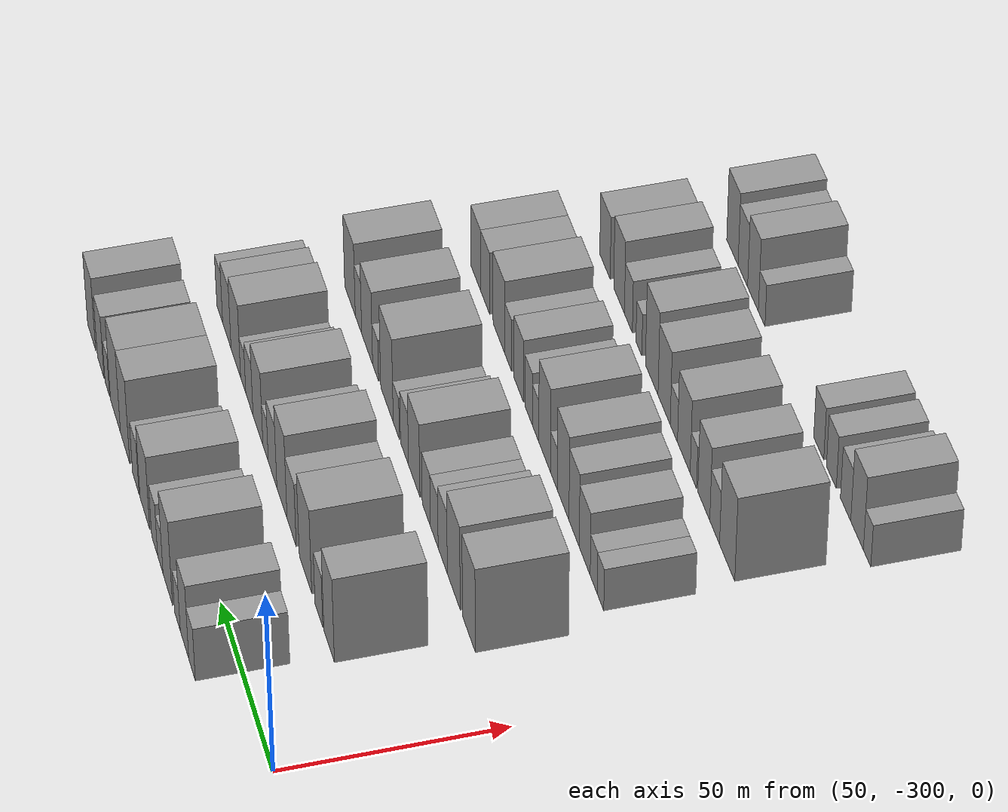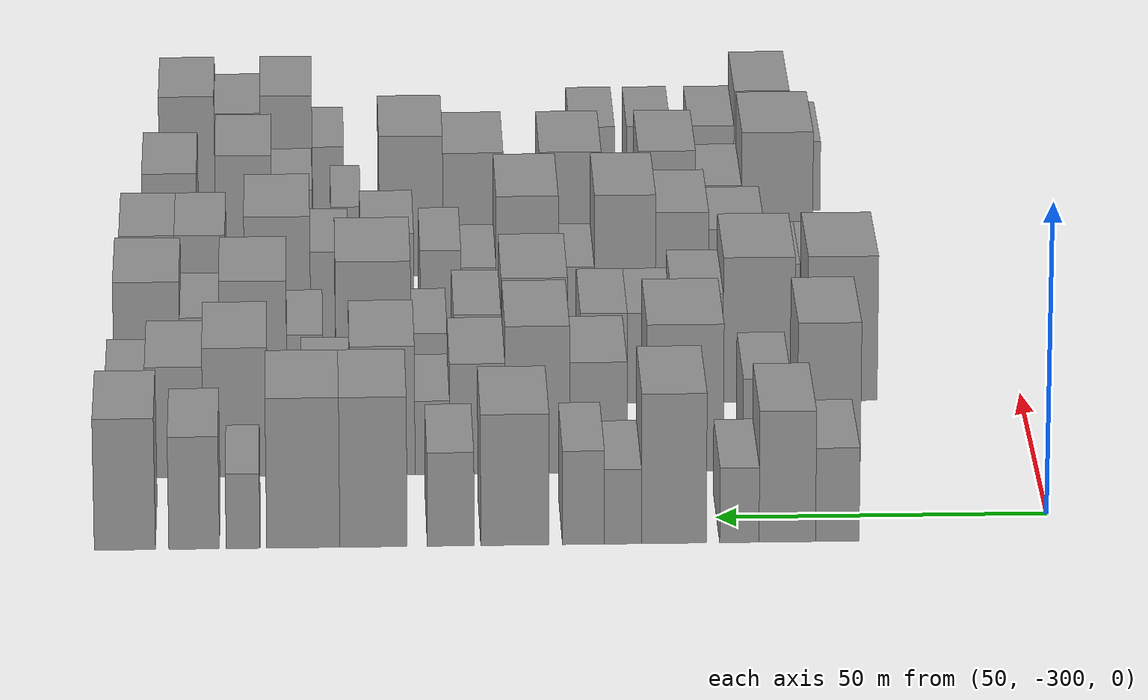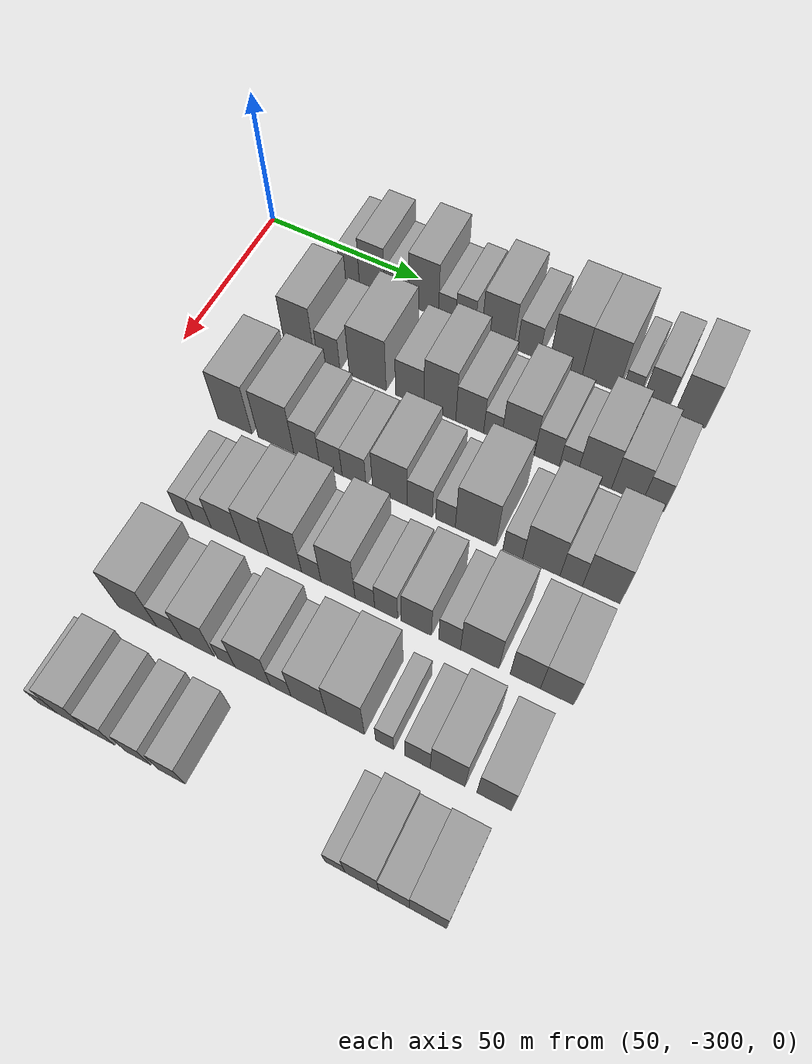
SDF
<sdf version="1.6">
 <world name="default">
  <model name="building_26">
   <static>1</static>
   <pose>50.0000 -267.6769 0 0.000000 0.000000 0.000000</pose>
   <link name="link">
    <pose>0 0 7.50 0 0 0</pose>
    <collision name="collision"><geometry><box><size>20.0000 6.5422 15.0000</size></box></geometry></collision>
    <visual name="visual">
     <cast_shadows>0</cast_shadows>
     <geometry><box><size>20.0000 6.5422 15.0000</size></box></geometry>
     <material>
      <script>
       <uri>model://grey_wall/materials/scripts</uri>
       <uri>model://grey_wall/materials/textures</uri>
       <name>vrc/grey_wall</name>
      </script>
     </material>
    </visual>
   </link>
  </model>
  <model name="building_27">
   <static>1</static>
   <pose>50.0000 -260.1765 0 0.000000 0.000000 0.000000</pose>
   <link name="link">
    <pose>0 0 10.50 0 0 0</pose>
    <collision name="collision"><geometry><box><size>20.0000 8.4587 21.0000</size></box></geometry></collision>
    <visual name="visual">
     <cast_shadows>0</cast_shadows>
     <geometry><box><size>20.0000 8.4587 21.0000</size></box></geometry>
     <material>
      <script>
       <uri>model://grey_wall/materials/scripts</uri>
       <uri>model://grey_wall/materials/textures</uri>
       <name>vrc/grey_wall</name>
      </script>
     </material>
    </visual>
   </link>
  </model>
  <model name="building_28">
   <static>1</static>
   <pose>50.0000 -253.0022 0 0.000000 0.000000 0.000000</pose>
   <link name="link">
    <pose>0 0 6.00 0 0 0</pose>
    <collision name="collision"><geometry><box><size>20.0000 5.8898 12.0000</size></box></geometry></collision>
    <visual name="visual">
     <cast_shadows>0</cast_shadows>
     <geometry><box><size>20.0000 5.8898 12.0000</size></box></geometry>
     <material>
      <script>
       <uri>model://grey_wall/materials/scripts</uri>
       <uri>model://grey_wall/materials/textures</uri>
       <name>vrc/grey_wall</name>
      </script>
     </material>
    </visual>
   </link>
  </model>
  <model name="building_29">
   <static>1</static>
   <pose>50.0000 -243.1957 0 0.000000 0.000000 0.000000</pose>
   <link name="link">
    <pose>0 0 12.00 0 0 0</pose>
    <collision name="collision"><geometry><box><size>20.0000 9.7231 24.0000</size></box></geometry></collision>
    <visual name="visual">
     <cast_shadows>0</cast_shadows>
     <geometry><box><size>20.0000 9.7231 24.0000</size></box></geometry>
     <material>
      <script>
       <uri>model://grey_wall/materials/scripts</uri>
       <uri>model://grey_wall/materials/textures</uri>
       <name>vrc/grey_wall</name>
      </script>
     </material>
    </visual>
   </link>
  </model>
  <model name="building_30">
   <static>1</static>
   <pose>50.0000 -235.5578 0 0.000000 0.000000 0.000000</pose>
   <link name="link">
    <pose>0 0 6.00 0 0 0</pose>
    <collision name="collision"><geometry><box><size>20.0000 5.5527 12.0000</size></box></geometry></collision>
    <visual name="visual">
     <cast_shadows>0</cast_shadows>
     <geometry><box><size>20.0000 5.5527 12.0000</size></box></geometry>
     <material>
      <script>
       <uri>model://grey_wall/materials/scripts</uri>
       <uri>model://grey_wall/materials/textures</uri>
       <name>vrc/grey_wall</name>
      </script>
     </material>
    </visual>
   </link>
  </model>
  <model name="building_31">
   <static>1</static>
   <pose>50.0000 -229.6478 0 0.000000 0.000000 0.000000</pose>
   <link name="link">
    <pose>0 0 7.50 0 0 0</pose>
    <collision name="collision"><geometry><box><size>20.0000 6.2674 15.0000</size></box></geometry></collision>
    <visual name="visual">
     <cast_shadows>0</cast_shadows>
     <geometry><box><size>20.0000 6.2674 15.0000</size></box></geometry>
     <material>
      <script>
       <uri>model://grey_wall/materials/scripts</uri>
       <uri>model://grey_wall/materials/textures</uri>
       <name>vrc/grey_wall</name>
      </script>
     </material>
    </visual>
   </link>
  </model>
  <model name="building_32">
   <static>1</static>
   <pose>50.0000 -219.4046 0 0.000000 0.000000 0.000000</pose>
   <link name="link">
    <pose>0 0 10.50 0 0 0</pose>
    <collision name="collision"><geometry><box><size>20.0000 10.2190 21.0000</size></box></geometry></collision>
    <visual name="visual">
     <cast_shadows>0</cast_shadows>
     <geometry><box><size>20.0000 10.2190 21.0000</size></box></geometry>
     <material>
      <script>
       <uri>model://grey_wall/materials/scripts</uri>
       <uri>model://grey_wall/materials/textures</uri>
       <name>vrc/grey_wall</name>
      </script>
     </material>
    </visual>
   </link>
  </model>
  <model name="building_33">
   <static>1</static>
   <pose>50.0000 -209.7942 0 0.000000 0.000000 0.000000</pose>
   <link name="link">
    <pose>0 0 7.50 0 0 0</pose>
    <collision name="collision"><geometry><box><size>20.0000 7.0017 15.0000</size></box></geometry></collision>
    <visual name="visual">
     <cast_shadows>0</cast_shadows>
     <geometry><box><size>20.0000 7.0017 15.0000</size></box></geometry>
     <material>
      <script>
       <uri>model://grey_wall/materials/scripts</uri>
       <uri>model://grey_wall/materials/textures</uri>
       <name>vrc/grey_wall</name>
      </script>
     </material>
    </visual>
   </link>
  </model>
  <model name="building_34">
   <static>1</static>
   <pose>50.0000 -198.2594 0 0.000000 0.000000 0.000000</pose>
   <link name="link">
    <pose>0 0 12.00 0 0 0</pose>
    <collision name="collision"><geometry><box><size>20.0000 10.0678 24.0000</size></box></geometry></collision>
    <visual name="visual">
     <cast_shadows>0</cast_shadows>
     <geometry><box><size>20.0000 10.0678 24.0000</size></box></geometry>
     <material>
      <script>
       <uri>model://grey_wall/materials/scripts</uri>
       <uri>model://grey_wall/materials/textures</uri>
       <name>vrc/grey_wall</name>
      </script>
     </material>
    </visual>
   </link>
  </model>
  <model name="building_35">
   <static>1</static>
   <pose>50.0000 -187.7629 0 0.000000 0.000000 0.000000</pose>
   <link name="link">
    <pose>0 0 12.00 0 0 0</pose>
    <collision name="collision"><geometry><box><size>20.0000 10.9252 24.0000</size></box></geometry></collision>
    <visual name="visual">
     <cast_shadows>0</cast_shadows>
     <geometry><box><size>20.0000 10.9252 24.0000</size></box></geometry>
     <material>
      <script>
       <uri>model://grey_wall/materials/scripts</uri>
       <uri>model://grey_wall/materials/textures</uri>
       <name>vrc/grey_wall</name>
      </script>
     </material>
    </visual>
   </link>
  </model>
  <model name="building_36">
   <static>1</static>
   <pose>50.0000 -178.7702 0 0.000000 0.000000 0.000000</pose>
   <link name="link">
    <pose>0 0 6.00 0 0 0</pose>
    <collision name="collision"><geometry><box><size>20.0000 5.0601 12.0000</size></box></geometry></collision>
    <visual name="visual">
     <cast_shadows>0</cast_shadows>
     <geometry><box><size>20.0000 5.0601 12.0000</size></box></geometry>
     <material>
      <script>
       <uri>model://grey_wall/materials/scripts</uri>
       <uri>model://grey_wall/materials/textures</uri>
       <name>vrc/grey_wall</name>
      </script>
     </material>
    </visual>
   </link>
  </model>
  <model name="building_37">
   <static>1</static>
   <pose>50.0000 -171.4633 0 0.000000 0.000000 0.000000</pose>
   <link name="link">
    <pose>0 0 9.00 0 0 0</pose>
    <collision name="collision"><geometry><box><size>20.0000 7.5538 18.0000</size></box></geometry></collision>
    <visual name="visual">
     <cast_shadows>0</cast_shadows>
     <geometry><box><size>20.0000 7.5538 18.0000</size></box></geometry>
     <material>
      <script>
       <uri>model://grey_wall/materials/scripts</uri>
       <uri>model://grey_wall/materials/textures</uri>
       <name>vrc/grey_wall</name>
      </script>
     </material>
    </visual>
   </link>
  </model>
  <model name="building_38">
   <static>1</static>
   <pose>50.0000 -161.1294 0 0.000000 0.000000 0.000000</pose>
   <link name="link">
    <pose>0 0 10.50 0 0 0</pose>
    <collision name="collision"><geometry><box><size>20.0000 9.1141 21.0000</size></box></geometry></collision>
    <visual name="visual">
     <cast_shadows>0</cast_shadows>
     <geometry><box><size>20.0000 9.1141 21.0000</size></box></geometry>
     <material>
      <script>
       <uri>model://grey_wall/materials/scripts</uri>
       <uri>model://grey_wall/materials/textures</uri>
       <name>vrc/grey_wall</name>
      </script>
     </material>
    </visual>
   </link>
  </model>
  <model name="building_140">
   <static>1</static>
   <pose>79.0000 -268.1261 0 0.000000 0.000000 0.000000</pose>
   <link name="link">
    <pose>0 0 12.00 0 0 0</pose>
    <collision name="collision"><geometry><box><size>20.0000 9.6598 24.0000</size></box></geometry></collision>
    <visual name="visual">
     <cast_shadows>0</cast_shadows>
     <geometry><box><size>20.0000 9.6598 24.0000</size></box></geometry>
     <material>
      <script>
       <uri>model://grey_wall/materials/scripts</uri>
       <uri>model://grey_wall/materials/textures</uri>
       <name>vrc/grey_wall</name>
      </script>
     </material>
    </visual>
   </link>
  </model>
  <model name="building_141">
   <static>1</static>
   <pose>79.0000 -258.6507 0 0.000000 0.000000 0.000000</pose>
   <link name="link">
    <pose>0 0 7.50 0 0 0</pose>
    <collision name="collision"><geometry><box><size>20.0000 7.2911 15.0000</size></box></geometry></collision>
    <visual name="visual">
     <cast_shadows>0</cast_shadows>
     <geometry><box><size>20.0000 7.2911 15.0000</size></box></geometry>
     <material>
      <script>
       <uri>model://grey_wall/materials/scripts</uri>
       <uri>model://grey_wall/materials/textures</uri>
       <name>vrc/grey_wall</name>
      </script>
     </material>
    </visual>
   </link>
  </model>
  <model name="building_142">
   <static>1</static>
   <pose>79.0000 -246.1406 0 0.000000 0.000000 0.000000</pose>
   <link name="link">
    <pose>0 0 12.00 0 0 0</pose>
    <collision name="collision"><geometry><box><size>20.0000 11.7292 24.0000</size></box></geometry></collision>
    <visual name="visual">
     <cast_shadows>0</cast_shadows>
     <geometry><box><size>20.0000 11.7292 24.0000</size></box></geometry>
     <material>
      <script>
       <uri>model://grey_wall/materials/scripts</uri>
       <uri>model://grey_wall/materials/textures</uri>
       <name>vrc/grey_wall</name>
      </script>
     </material>
    </visual>
   </link>
  </model>
  <model name="building_143">
   <static>1</static>
   <pose>79.0000 -232.8889 0 0.000000 0.000000 0.000000</pose>
   <link name="link">
    <pose>0 0 9.00 0 0 0</pose>
    <collision name="collision"><geometry><box><size>20.0000 8.7742 18.0000</size></box></geometry></collision>
    <visual name="visual">
     <cast_shadows>0</cast_shadows>
     <geometry><box><size>20.0000 8.7742 18.0000</size></box></geometry>
     <material>
      <script>
       <uri>model://grey_wall/materials/scripts</uri>
       <uri>model://grey_wall/materials/textures</uri>
       <name>vrc/grey_wall</name>
      </script>
     </material>
    </visual>
   </link>
  </model>
  <model name="building_144">
   <static>1</static>
   <pose>79.0000 -223.5871 0 0.000000 0.000000 0.000000</pose>
   <link name="link">
    <pose>0 0 12.00 0 0 0</pose>
    <collision name="collision"><geometry><box><size>20.0000 9.8293 24.0000</size></box></geometry></collision>
    <visual name="visual">
     <cast_shadows>0</cast_shadows>
     <geometry><box><size>20.0000 9.8293 24.0000</size></box></geometry>
     <material>
      <script>
       <uri>model://grey_wall/materials/scripts</uri>
       <uri>model://grey_wall/materials/textures</uri>
       <name>vrc/grey_wall</name>
      </script>
     </material>
    </visual>
   </link>
  </model>
  <model name="building_145">
   <static>1</static>
   <pose>79.0000 -214.4457 0 0.000000 0.000000 0.000000</pose>
   <link name="link">
    <pose>0 0 9.00 0 0 0</pose>
    <collision name="collision"><geometry><box><size>20.0000 8.4535 18.0000</size></box></geometry></collision>
    <visual name="visual">
     <cast_shadows>0</cast_shadows>
     <geometry><box><size>20.0000 8.4535 18.0000</size></box></geometry>
     <material>
      <script>
       <uri>model://grey_wall/materials/scripts</uri>
       <uri>model://grey_wall/materials/textures</uri>
       <name>vrc/grey_wall</name>
      </script>
     </material>
    </visual>
   </link>
  </model>
  <model name="building_146">
   <static>1</static>
   <pose>79.0000 -207.5660 0 0.000000 0.000000 0.000000</pose>
   <link name="link">
    <pose>0 0 6.00 0 0 0</pose>
    <collision name="collision"><geometry><box><size>20.0000 5.3060 12.0000</size></box></geometry></collision>
    <visual name="visual">
     <cast_shadows>0</cast_shadows>
     <geometry><box><size>20.0000 5.3060 12.0000</size></box></geometry>
     <material>
      <script>
       <uri>model://grey_wall/materials/scripts</uri>
       <uri>model://grey_wall/materials/textures</uri>
       <name>vrc/grey_wall</name>
      </script>
     </material>
    </visual>
   </link>
  </model>
  <model name="building_147">
   <static>1</static>
   <pose>79.0000 -199.9691 0 0.000000 0.000000 0.000000</pose>
   <link name="link">
    <pose>0 0 10.50 0 0 0</pose>
    <collision name="collision"><geometry><box><size>20.0000 9.8878 21.0000</size></box></geometry></collision>
    <visual name="visual">
     <cast_shadows>0</cast_shadows>
     <geometry><box><size>20.0000 9.8878 21.0000</size></box></geometry>
     <material>
      <script>
       <uri>model://grey_wall/materials/scripts</uri>
       <uri>model://grey_wall/materials/textures</uri>
       <name>vrc/grey_wall</name>
      </script>
     </material>
    </visual>
   </link>
  </model>
  <model name="building_148">
   <static>1</static>
   <pose>79.0000 -191.3534 0 0.000000 0.000000 0.000000</pose>
   <link name="link">
    <pose>0 0 7.50 0 0 0</pose>
    <collision name="collision"><geometry><box><size>20.0000 7.3436 15.0000</size></box></geometry></collision>
    <visual name="visual">
     <cast_shadows>0</cast_shadows>
     <geometry><box><size>20.0000 7.3436 15.0000</size></box></geometry>
     <material>
      <script>
       <uri>model://grey_wall/materials/scripts</uri>
       <uri>model://grey_wall/materials/textures</uri>
       <name>vrc/grey_wall</name>
      </script>
     </material>
    </visual>
   </link>
  </model>
  <model name="building_149">
   <static>1</static>
   <pose>79.0000 -185.0536 0 0.000000 0.000000 0.000000</pose>
   <link name="link">
    <pose>0 0 6.00 0 0 0</pose>
    <collision name="collision"><geometry><box><size>20.0000 5.2560 12.0000</size></box></geometry></collision>
    <visual name="visual">
     <cast_shadows>0</cast_shadows>
     <geometry><box><size>20.0000 5.2560 12.0000</size></box></geometry>
     <material>
      <script>
       <uri>model://grey_wall/materials/scripts</uri>
       <uri>model://grey_wall/materials/textures</uri>
       <name>vrc/grey_wall</name>
      </script>
     </material>
    </visual>
   </link>
  </model>
  <model name="building_150">
   <static>1</static>
   <pose>79.0000 -177.5264 0 0.000000 0.000000 0.000000</pose>
   <link name="link">
    <pose>0 0 10.50 0 0 0</pose>
    <collision name="collision"><geometry><box><size>20.0000 9.7983 21.0000</size></box></geometry></collision>
    <visual name="visual">
     <cast_shadows>0</cast_shadows>
     <geometry><box><size>20.0000 9.7983 21.0000</size></box></geometry>
     <material>
      <script>
       <uri>model://grey_wall/materials/scripts</uri>
       <uri>model://grey_wall/materials/textures</uri>
       <name>vrc/grey_wall</name>
      </script>
     </material>
    </visual>
   </link>
  </model>
  <model name="building_151">
   <static>1</static>
   <pose>79.0000 -168.2551 0 0.000000 0.000000 0.000000</pose>
   <link name="link">
    <pose>0 0 9.00 0 0 0</pose>
    <collision name="collision"><geometry><box><size>20.0000 8.7443 18.0000</size></box></geometry></collision>
    <visual name="visual">
     <cast_shadows>0</cast_shadows>
     <geometry><box><size>20.0000 8.7443 18.0000</size></box></geometry>
     <material>
      <script>
       <uri>model://grey_wall/materials/scripts</uri>
       <uri>model://grey_wall/materials/textures</uri>
       <name>vrc/grey_wall</name>
      </script>
     </material>
    </visual>
   </link>
  </model>
  <model name="building_152">
   <static>1</static>
   <pose>79.0000 -160.8396 0 0.000000 0.000000 0.000000</pose>
   <link name="link">
    <pose>0 0 7.50 0 0 0</pose>
    <collision name="collision"><geometry><box><size>20.0000 6.0868 15.0000</size></box></geometry></collision>
    <visual name="visual">
     <cast_shadows>0</cast_shadows>
     <geometry><box><size>20.0000 6.0868 15.0000</size></box></geometry>
     <material>
      <script>
       <uri>model://grey_wall/materials/scripts</uri>
       <uri>model://grey_wall/materials/textures</uri>
       <name>vrc/grey_wall</name>
      </script>
     </material>
    </visual>
   </link>
  </model>
  <model name="building_245">
   <static>1</static>
   <pose>108.0000 -271.9712 0 0.000000 0.000000 0.000000</pose>
   <link name="link">
    <pose>0 0 12.00 0 0 0</pose>
    <collision name="collision"><geometry><box><size>20.0000 10.9308 24.0000</size></box></geometry></collision>
    <visual name="visual">
     <cast_shadows>0</cast_shadows>
     <geometry><box><size>20.0000 10.9308 24.0000</size></box></geometry>
     <material>
      <script>
       <uri>model://grey_wall/materials/scripts</uri>
       <uri>model://grey_wall/materials/textures</uri>
       <name>vrc/grey_wall</name>
      </script>
     </material>
    </visual>
   </link>
  </model>
  <model name="building_246">
   <static>1</static>
   <pose>108.0000 -258.9208 0 0.000000 0.000000 0.000000</pose>
   <link name="link">
    <pose>0 0 12.00 0 0 0</pose>
    <collision name="collision"><geometry><box><size>20.0000 11.1700 24.0000</size></box></geometry></collision>
    <visual name="visual">
     <cast_shadows>0</cast_shadows>
     <geometry><box><size>20.0000 11.1700 24.0000</size></box></geometry>
     <material>
      <script>
       <uri>model://grey_wall/materials/scripts</uri>
       <uri>model://grey_wall/materials/textures</uri>
       <name>vrc/grey_wall</name>
      </script>
     </material>
    </visual>
   </link>
  </model>
  <model name="building_247">
   <static>1</static>
   <pose>108.0000 -249.3037 0 0.000000 0.000000 0.000000</pose>
   <link name="link">
    <pose>0 0 9.00 0 0 0</pose>
    <collision name="collision"><geometry><box><size>20.0000 8.0643 18.0000</size></box></geometry></collision>
    <visual name="visual">
     <cast_shadows>0</cast_shadows>
     <geometry><box><size>20.0000 8.0643 18.0000</size></box></geometry>
     <material>
      <script>
       <uri>model://grey_wall/materials/scripts</uri>
       <uri>model://grey_wall/materials/textures</uri>
       <name>vrc/grey_wall</name>
      </script>
     </material>
    </visual>
   </link>
  </model>
  <model name="building_248">
   <static>1</static>
   <pose>108.0000 -241.8437 0 0.000000 0.000000 0.000000</pose>
   <link name="link">
    <pose>0 0 7.50 0 0 0</pose>
    <collision name="collision"><geometry><box><size>20.0000 6.8556 15.0000</size></box></geometry></collision>
    <visual name="visual">
     <cast_shadows>0</cast_shadows>
     <geometry><box><size>20.0000 6.8556 15.0000</size></box></geometry>
     <material>
      <script>
       <uri>model://grey_wall/materials/scripts</uri>
       <uri>model://grey_wall/materials/textures</uri>
       <name>vrc/grey_wall</name>
      </script>
     </material>
    </visual>
   </link>
  </model>
  <model name="building_249">
   <static>1</static>
   <pose>108.0000 -234.7625 0 0.000000 0.000000 0.000000</pose>
   <link name="link">
    <pose>0 0 7.50 0 0 0</pose>
    <collision name="collision"><geometry><box><size>20.0000 7.3069 15.0000</size></box></geometry></collision>
    <visual name="visual">
     <cast_shadows>0</cast_shadows>
     <geometry><box><size>20.0000 7.3069 15.0000</size></box></geometry>
     <material>
      <script>
       <uri>model://grey_wall/materials/scripts</uri>
       <uri>model://grey_wall/materials/textures</uri>
       <name>vrc/grey_wall</name>
      </script>
     </material>
    </visual>
   </link>
  </model>
  <model name="building_250">
   <static>1</static>
   <pose>108.0000 -223.9552 0 0.000000 0.000000 0.000000</pose>
   <link name="link">
    <pose>0 0 10.50 0 0 0</pose>
    <collision name="collision"><geometry><box><size>20.0000 10.3077 21.0000</size></box></geometry></collision>
    <visual name="visual">
     <cast_shadows>0</cast_shadows>
     <geometry><box><size>20.0000 10.3077 21.0000</size></box></geometry>
     <material>
      <script>
       <uri>model://grey_wall/materials/scripts</uri>
       <uri>model://grey_wall/materials/textures</uri>
       <name>vrc/grey_wall</name>
      </script>
     </material>
    </visual>
   </link>
  </model>
  <model name="building_251">
   <static>1</static>
   <pose>108.0000 -215.1153 0 0.000000 0.000000 0.000000</pose>
   <link name="link">
    <pose>0 0 7.50 0 0 0</pose>
    <collision name="collision"><geometry><box><size>20.0000 7.3721 15.0000</size></box></geometry></collision>
    <visual name="visual">
     <cast_shadows>0</cast_shadows>
     <geometry><box><size>20.0000 7.3721 15.0000</size></box></geometry>
     <material>
      <script>
       <uri>model://grey_wall/materials/scripts</uri>
       <uri>model://grey_wall/materials/textures</uri>
       <name>vrc/grey_wall</name>
      </script>
     </material>
    </visual>
   </link>
  </model>
  <model name="building_252">
   <static>1</static>
   <pose>108.0000 -207.5913 0 0.000000 0.000000 0.000000</pose>
   <link name="link">
    <pose>0 0 6.00 0 0 0</pose>
    <collision name="collision"><geometry><box><size>20.0000 5.6759 12.0000</size></box></geometry></collision>
    <visual name="visual">
     <cast_shadows>0</cast_shadows>
     <geometry><box><size>20.0000 5.6759 12.0000</size></box></geometry>
     <material>
      <script>
       <uri>model://grey_wall/materials/scripts</uri>
       <uri>model://grey_wall/materials/textures</uri>
       <name>vrc/grey_wall</name>
      </script>
     </material>
    </visual>
   </link>
  </model>
  <model name="building_253">
   <static>1</static>
   <pose>108.0000 -198.9198 0 0.000000 0.000000 0.000000</pose>
   <link name="link">
    <pose>0 0 12.00 0 0 0</pose>
    <collision name="collision"><geometry><box><size>20.0000 11.6672 24.0000</size></box></geometry></collision>
    <visual name="visual">
     <cast_shadows>0</cast_shadows>
     <geometry><box><size>20.0000 11.6672 24.0000</size></box></geometry>
     <material>
      <script>
       <uri>model://grey_wall/materials/scripts</uri>
       <uri>model://grey_wall/materials/textures</uri>
       <name>vrc/grey_wall</name>
      </script>
     </material>
    </visual>
   </link>
  </model>
  <model name="building_254">
   <static>1</static>
   <pose>108.0000 -188.2646 0 0.000000 0.000000 0.000000</pose>
   <link name="link">
    <pose>0 0 6.00 0 0 0</pose>
    <collision name="collision"><geometry><box><size>20.0000 5.6431 12.0000</size></box></geometry></collision>
    <visual name="visual">
     <cast_shadows>0</cast_shadows>
     <geometry><box><size>20.0000 5.6431 12.0000</size></box></geometry>
     <material>
      <script>
       <uri>model://grey_wall/materials/scripts</uri>
       <uri>model://grey_wall/materials/textures</uri>
       <name>vrc/grey_wall</name>
      </script>
     </material>
    </visual>
   </link>
  </model>
  <model name="building_255">
   <static>1</static>
   <pose>108.0000 -180.2350 0 0.000000 0.000000 0.000000</pose>
   <link name="link">
    <pose>0 0 10.50 0 0 0</pose>
    <collision name="collision"><geometry><box><size>20.0000 10.4162 21.0000</size></box></geometry></collision>
    <visual name="visual">
     <cast_shadows>0</cast_shadows>
     <geometry><box><size>20.0000 10.4162 21.0000</size></box></geometry>
     <material>
      <script>
       <uri>model://grey_wall/materials/scripts</uri>
       <uri>model://grey_wall/materials/textures</uri>
       <name>vrc/grey_wall</name>
      </script>
     </material>
    </visual>
   </link>
  </model>
  <model name="building_256">
   <static>1</static>
   <pose>108.0000 -171.9533 0 0.000000 0.000000 0.000000</pose>
   <link name="link">
    <pose>0 0 7.50 0 0 0</pose>
    <collision name="collision"><geometry><box><size>20.0000 6.1472 15.0000</size></box></geometry></collision>
    <visual name="visual">
     <cast_shadows>0</cast_shadows>
     <geometry><box><size>20.0000 6.1472 15.0000</size></box></geometry>
     <material>
      <script>
       <uri>model://grey_wall/materials/scripts</uri>
       <uri>model://grey_wall/materials/textures</uri>
       <name>vrc/grey_wall</name>
      </script>
     </material>
    </visual>
   </link>
  </model>
  <model name="building_257">
   <static>1</static>
   <pose>108.0000 -163.7430 0 0.000000 0.000000 0.000000</pose>
   <link name="link">
    <pose>0 0 10.50 0 0 0</pose>
    <collision name="collision"><geometry><box><size>20.0000 10.2735 21.0000</size></box></geometry></collision>
    <visual name="visual">
     <cast_shadows>0</cast_shadows>
     <geometry><box><size>20.0000 10.2735 21.0000</size></box></geometry>
     <material>
      <script>
       <uri>model://grey_wall/materials/scripts</uri>
       <uri>model://grey_wall/materials/textures</uri>
       <name>vrc/grey_wall</name>
      </script>
     </material>
    </visual>
   </link>
  </model>
  <model name="building_349">
   <static>1</static>
   <pose>137.0000 -269.6066 0 0.000000 0.000000 0.000000</pose>
   <link name="link">
    <pose>0 0 6.00 0 0 0</pose>
    <collision name="collision"><geometry><box><size>20.0000 5.2614 12.0000</size></box></geometry></collision>
    <visual name="visual">
     <cast_shadows>0</cast_shadows>
     <geometry><box><size>20.0000 5.2614 12.0000</size></box></geometry>
     <material>
      <script>
       <uri>model://grey_wall/materials/scripts</uri>
       <uri>model://grey_wall/materials/textures</uri>
       <name>vrc/grey_wall</name>
      </script>
     </material>
    </visual>
   </link>
  </model>
  <model name="building_350">
   <static>1</static>
   <pose>137.0000 -264.1627 0 0.000000 0.000000 0.000000</pose>
   <link name="link">
    <pose>0 0 6.00 0 0 0</pose>
    <collision name="collision"><geometry><box><size>20.0000 5.6265 12.0000</size></box></geometry></collision>
    <visual name="visual">
     <cast_shadows>0</cast_shadows>
     <geometry><box><size>20.0000 5.6265 12.0000</size></box></geometry>
     <material>
      <script>
       <uri>model://grey_wall/materials/scripts</uri>
       <uri>model://grey_wall/materials/textures</uri>
       <name>vrc/grey_wall</name>
      </script>
     </material>
    </visual>
   </link>
  </model>
  <model name="building_351">
   <static>1</static>
   <pose>137.0000 -256.8835 0 0.000000 0.000000 0.000000</pose>
   <link name="link">
    <pose>0 0 9.00 0 0 0</pose>
    <collision name="collision"><geometry><box><size>20.0000 8.9320 18.0000</size></box></geometry></collision>
    <visual name="visual">
     <cast_shadows>0</cast_shadows>
     <geometry><box><size>20.0000 8.9320 18.0000</size></box></geometry>
     <material>
      <script>
       <uri>model://grey_wall/materials/scripts</uri>
       <uri>model://grey_wall/materials/textures</uri>
       <name>vrc/grey_wall</name>
      </script>
     </material>
    </visual>
   </link>
  </model>
  <model name="building_352">
   <static>1</static>
   <pose>137.0000 -248.2038 0 0.000000 0.000000 0.000000</pose>
   <link name="link">
    <pose>0 0 10.50 0 0 0</pose>
    <collision name="collision"><geometry><box><size>20.0000 8.4273 21.0000</size></box></geometry></collision>
    <visual name="visual">
     <cast_shadows>0</cast_shadows>
     <geometry><box><size>20.0000 8.4273 21.0000</size></box></geometry>
     <material>
      <script>
       <uri>model://grey_wall/materials/scripts</uri>
       <uri>model://grey_wall/materials/textures</uri>
       <name>vrc/grey_wall</name>
      </script>
     </material>
    </visual>
   </link>
  </model>
  <model name="building_353">
   <static>1</static>
   <pose>137.0000 -239.1440 0 0.000000 0.000000 0.000000</pose>
   <link name="link">
    <pose>0 0 12.00 0 0 0</pose>
    <collision name="collision"><geometry><box><size>20.0000 9.6923 24.0000</size></box></geometry></collision>
    <visual name="visual">
     <cast_shadows>0</cast_shadows>
     <geometry><box><size>20.0000 9.6923 24.0000</size></box></geometry>
     <material>
      <script>
       <uri>model://grey_wall/materials/scripts</uri>
       <uri>model://grey_wall/materials/textures</uri>
       <name>vrc/grey_wall</name>
      </script>
     </material>
    </visual>
   </link>
  </model>
  <model name="building_354">
   <static>1</static>
   <pose>137.0000 -231.4386 0 0.000000 0.000000 0.000000</pose>
   <link name="link">
    <pose>0 0 6.00 0 0 0</pose>
    <collision name="collision"><geometry><box><size>20.0000 5.7184 12.0000</size></box></geometry></collision>
    <visual name="visual">
     <cast_shadows>0</cast_shadows>
     <geometry><box><size>20.0000 5.7184 12.0000</size></box></geometry>
     <material>
      <script>
       <uri>model://grey_wall/materials/scripts</uri>
       <uri>model://grey_wall/materials/textures</uri>
       <name>vrc/grey_wall</name>
      </script>
     </material>
    </visual>
   </link>
  </model>
  <model name="building_355">
   <static>1</static>
   <pose>137.0000 -223.6517 0 0.000000 0.000000 0.000000</pose>
   <link name="link">
    <pose>0 0 12.00 0 0 0</pose>
    <collision name="collision"><geometry><box><size>20.0000 9.8555 24.0000</size></box></geometry></collision>
    <visual name="visual">
     <cast_shadows>0</cast_shadows>
     <geometry><box><size>20.0000 9.8555 24.0000</size></box></geometry>
     <material>
      <script>
       <uri>model://grey_wall/materials/scripts</uri>
       <uri>model://grey_wall/materials/textures</uri>
       <name>vrc/grey_wall</name>
      </script>
     </material>
    </visual>
   </link>
  </model>
  <model name="building_356">
   <static>1</static>
   <pose>137.0000 -215.9314 0 0.000000 0.000000 0.000000</pose>
   <link name="link">
    <pose>0 0 6.00 0 0 0</pose>
    <collision name="collision"><geometry><box><size>20.0000 5.5850 12.0000</size></box></geometry></collision>
    <visual name="visual">
     <cast_shadows>0</cast_shadows>
     <geometry><box><size>20.0000 5.5850 12.0000</size></box></geometry>
     <material>
      <script>
       <uri>model://grey_wall/materials/scripts</uri>
       <uri>model://grey_wall/materials/textures</uri>
       <name>vrc/grey_wall</name>
      </script>
     </material>
    </visual>
   </link>
  </model>
  <model name="building_357">
   <static>1</static>
   <pose>137.0000 -209.8949 0 0.000000 0.000000 0.000000</pose>
   <link name="link">
    <pose>0 0 7.50 0 0 0</pose>
    <collision name="collision"><geometry><box><size>20.0000 6.4879 15.0000</size></box></geometry></collision>
    <visual name="visual">
     <cast_shadows>0</cast_shadows>
     <geometry><box><size>20.0000 6.4879 15.0000</size></box></geometry>
     <material>
      <script>
       <uri>model://grey_wall/materials/scripts</uri>
       <uri>model://grey_wall/materials/textures</uri>
       <name>vrc/grey_wall</name>
      </script>
     </material>
    </visual>
   </link>
  </model>
  <model name="building_358">
   <static>1</static>
   <pose>137.0000 -201.4519 0 0.000000 0.000000 0.000000</pose>
   <link name="link">
    <pose>0 0 9.00 0 0 0</pose>
    <collision name="collision"><geometry><box><size>20.0000 8.3982 18.0000</size></box></geometry></collision>
    <visual name="visual">
     <cast_shadows>0</cast_shadows>
     <geometry><box><size>20.0000 8.3982 18.0000</size></box></geometry>
     <material>
      <script>
       <uri>model://grey_wall/materials/scripts</uri>
       <uri>model://grey_wall/materials/textures</uri>
       <name>vrc/grey_wall</name>
      </script>
     </material>
    </visual>
   </link>
  </model>
  <model name="building_359">
   <static>1</static>
   <pose>137.0000 -192.2459 0 0.000000 0.000000 0.000000</pose>
   <link name="link">
    <pose>0 0 7.50 0 0 0</pose>
    <collision name="collision"><geometry><box><size>20.0000 6.0137 15.0000</size></box></geometry></collision>
    <visual name="visual">
     <cast_shadows>0</cast_shadows>
     <geometry><box><size>20.0000 6.0137 15.0000</size></box></geometry>
     <material>
      <script>
       <uri>model://grey_wall/materials/scripts</uri>
       <uri>model://grey_wall/materials/textures</uri>
       <name>vrc/grey_wall</name>
      </script>
     </material>
    </visual>
   </link>
  </model>
  <model name="building_360">
   <static>1</static>
   <pose>137.0000 -184.0254 0 0.000000 0.000000 0.000000</pose>
   <link name="link">
    <pose>0 0 10.50 0 0 0</pose>
    <collision name="collision"><geometry><box><size>20.0000 10.4275 21.0000</size></box></geometry></collision>
    <visual name="visual">
     <cast_shadows>0</cast_shadows>
     <geometry><box><size>20.0000 10.4275 21.0000</size></box></geometry>
     <material>
      <script>
       <uri>model://grey_wall/materials/scripts</uri>
       <uri>model://grey_wall/materials/textures</uri>
       <name>vrc/grey_wall</name>
      </script>
     </material>
    </visual>
   </link>
  </model>
  <model name="building_361">
   <static>1</static>
   <pose>137.0000 -171.7844 0 0.000000 0.000000 0.000000</pose>
   <link name="link">
    <pose>0 0 9.00 0 0 0</pose>
    <collision name="collision"><geometry><box><size>20.0000 8.0544 18.0000</size></box></geometry></collision>
    <visual name="visual">
     <cast_shadows>0</cast_shadows>
     <geometry><box><size>20.0000 8.0544 18.0000</size></box></geometry>
     <material>
      <script>
       <uri>model://grey_wall/materials/scripts</uri>
       <uri>model://grey_wall/materials/textures</uri>
       <name>vrc/grey_wall</name>
      </script>
     </material>
    </visual>
   </link>
  </model>
  <model name="building_362">
   <static>1</static>
   <pose>137.0000 -163.3893 0 0.000000 0.000000 0.000000</pose>
   <link name="link">
    <pose>0 0 9.00 0 0 0</pose>
    <collision name="collision"><geometry><box><size>20.0000 8.7358 18.0000</size></box></geometry></collision>
    <visual name="visual">
     <cast_shadows>0</cast_shadows>
     <geometry><box><size>20.0000 8.7358 18.0000</size></box></geometry>
     <material>
      <script>
       <uri>model://grey_wall/materials/scripts</uri>
       <uri>model://grey_wall/materials/textures</uri>
       <name>vrc/grey_wall</name>
      </script>
     </material>
    </visual>
   </link>
  </model>
  <model name="building_468">
   <static>1</static>
   <pose>166.0000 -264.8939 0 0.000000 0.000000 0.000000</pose>
   <link name="link">
    <pose>0 0 12.00 0 0 0</pose>
    <collision name="collision"><geometry><box><size>20.0000 11.5400 24.0000</size></box></geometry></collision>
    <visual name="visual">
     <cast_shadows>0</cast_shadows>
     <geometry><box><size>20.0000 11.5400 24.0000</size></box></geometry>
     <material>
      <script>
       <uri>model://grey_wall/materials/scripts</uri>
       <uri>model://grey_wall/materials/textures</uri>
       <name>vrc/grey_wall</name>
      </script>
     </material>
    </visual>
   </link>
  </model>
  <model name="building_469">
   <static>1</static>
   <pose>166.0000 -255.3794 0 0.000000 0.000000 0.000000</pose>
   <link name="link">
    <pose>0 0 7.50 0 0 0</pose>
    <collision name="collision"><geometry><box><size>20.0000 7.4888 15.0000</size></box></geometry></collision>
    <visual name="visual">
     <cast_shadows>0</cast_shadows>
     <geometry><box><size>20.0000 7.4888 15.0000</size></box></geometry>
     <material>
      <script>
       <uri>model://grey_wall/materials/scripts</uri>
       <uri>model://grey_wall/materials/textures</uri>
       <name>vrc/grey_wall</name>
      </script>
     </material>
    </visual>
   </link>
  </model>
  <model name="building_470">
   <static>1</static>
   <pose>166.0000 -246.9981 0 0.000000 0.000000 0.000000</pose>
   <link name="link">
    <pose>0 0 10.50 0 0 0</pose>
    <collision name="collision"><geometry><box><size>20.0000 9.2737 21.0000</size></box></geometry></collision>
    <visual name="visual">
     <cast_shadows>0</cast_shadows>
     <geometry><box><size>20.0000 9.2737 21.0000</size></box></geometry>
     <material>
      <script>
       <uri>model://grey_wall/materials/scripts</uri>
       <uri>model://grey_wall/materials/textures</uri>
       <name>vrc/grey_wall</name>
      </script>
     </material>
    </visual>
   </link>
  </model>
  <model name="building_471">
   <static>1</static>
   <pose>166.0000 -238.8766 0 0.000000 0.000000 0.000000</pose>
   <link name="link">
    <pose>0 0 6.00 0 0 0</pose>
    <collision name="collision"><geometry><box><size>20.0000 4.9694 12.0000</size></box></geometry></collision>
    <visual name="visual">
     <cast_shadows>0</cast_shadows>
     <geometry><box><size>20.0000 4.9694 12.0000</size></box></geometry>
     <material>
      <script>
       <uri>model://grey_wall/materials/scripts</uri>
       <uri>model://grey_wall/materials/textures</uri>
       <name>vrc/grey_wall</name>
      </script>
     </material>
    </visual>
   </link>
  </model>
  <model name="building_472">
   <static>1</static>
   <pose>166.0000 -231.3807 0 0.000000 0.000000 0.000000</pose>
   <link name="link">
    <pose>0 0 10.50 0 0 0</pose>
    <collision name="collision"><geometry><box><size>20.0000 10.0223 21.0000</size></box></geometry></collision>
    <visual name="visual">
     <cast_shadows>0</cast_shadows>
     <geometry><box><size>20.0000 10.0223 21.0000</size></box></geometry>
     <material>
      <script>
       <uri>model://grey_wall/materials/scripts</uri>
       <uri>model://grey_wall/materials/textures</uri>
       <name>vrc/grey_wall</name>
      </script>
     </material>
    </visual>
   </link>
  </model>
  <model name="building_473">
   <static>1</static>
   <pose>166.0000 -223.4693 0 0.000000 0.000000 0.000000</pose>
   <link name="link">
    <pose>0 0 6.00 0 0 0</pose>
    <collision name="collision"><geometry><box><size>20.0000 5.8007 12.0000</size></box></geometry></collision>
    <visual name="visual">
     <cast_shadows>0</cast_shadows>
     <geometry><box><size>20.0000 5.8007 12.0000</size></box></geometry>
     <material>
      <script>
       <uri>model://grey_wall/materials/scripts</uri>
       <uri>model://grey_wall/materials/textures</uri>
       <name>vrc/grey_wall</name>
      </script>
     </material>
    </visual>
   </link>
  </model>
  <model name="building_474">
   <static>1</static>
   <pose>166.0000 -215.6748 0 0.000000 0.000000 0.000000</pose>
   <link name="link">
    <pose>0 0 10.50 0 0 0</pose>
    <collision name="collision"><geometry><box><size>20.0000 9.7882 21.0000</size></box></geometry></collision>
    <visual name="visual">
     <cast_shadows>0</cast_shadows>
     <geometry><box><size>20.0000 9.7882 21.0000</size></box></geometry>
     <material>
      <script>
       <uri>model://grey_wall/materials/scripts</uri>
       <uri>model://grey_wall/materials/textures</uri>
       <name>vrc/grey_wall</name>
      </script>
     </material>
    </visual>
   </link>
  </model>
  <model name="building_475">
   <static>1</static>
   <pose>166.0000 -205.6396 0 0.000000 0.000000 0.000000</pose>
   <link name="link">
    <pose>0 0 12.00 0 0 0</pose>
    <collision name="collision"><geometry><box><size>20.0000 10.2823 24.0000</size></box></geometry></collision>
    <visual name="visual">
     <cast_shadows>0</cast_shadows>
     <geometry><box><size>20.0000 10.2823 24.0000</size></box></geometry>
     <material>
      <script>
       <uri>model://grey_wall/materials/scripts</uri>
       <uri>model://grey_wall/materials/textures</uri>
       <name>vrc/grey_wall</name>
      </script>
     </material>
    </visual>
   </link>
  </model>
  <model name="building_476">
   <static>1</static>
   <pose>166.0000 -195.0901 0 0.000000 0.000000 0.000000</pose>
   <link name="link">
    <pose>0 0 6.00 0 0 0</pose>
    <collision name="collision"><geometry><box><size>20.0000 4.8168 12.0000</size></box></geometry></collision>
    <visual name="visual">
     <cast_shadows>0</cast_shadows>
     <geometry><box><size>20.0000 4.8168 12.0000</size></box></geometry>
     <material>
      <script>
       <uri>model://grey_wall/materials/scripts</uri>
       <uri>model://grey_wall/materials/textures</uri>
       <name>vrc/grey_wall</name>
      </script>
     </material>
    </visual>
   </link>
  </model>
  <model name="building_477">
   <static>1</static>
   <pose>166.0000 -186.3803 0 0.000000 0.000000 0.000000</pose>
   <link name="link">
    <pose>0 0 7.50 0 0 0</pose>
    <collision name="collision"><geometry><box><size>20.0000 6.6028 15.0000</size></box></geometry></collision>
    <visual name="visual">
     <cast_shadows>0</cast_shadows>
     <geometry><box><size>20.0000 6.6028 15.0000</size></box></geometry>
     <material>
      <script>
       <uri>model://grey_wall/materials/scripts</uri>
       <uri>model://grey_wall/materials/textures</uri>
       <name>vrc/grey_wall</name>
      </script>
     </material>
    </visual>
   </link>
  </model>
  <model name="building_478">
   <static>1</static>
   <pose>166.0000 -178.5712 0 0.000000 0.000000 0.000000</pose>
   <link name="link">
    <pose>0 0 10.50 0 0 0</pose>
    <collision name="collision"><geometry><box><size>20.0000 9.0154 21.0000</size></box></geometry></collision>
    <visual name="visual">
     <cast_shadows>0</cast_shadows>
     <geometry><box><size>20.0000 9.0154 21.0000</size></box></geometry>
     <material>
      <script>
       <uri>model://grey_wall/materials/scripts</uri>
       <uri>model://grey_wall/materials/textures</uri>
       <name>vrc/grey_wall</name>
      </script>
     </material>
    </visual>
   </link>
  </model>
  <model name="building_479">
   <static>1</static>
   <pose>166.0000 -166.6498 0 0.000000 0.000000 0.000000</pose>
   <link name="link">
    <pose>0 0 9.00 0 0 0</pose>
    <collision name="collision"><geometry><box><size>20.0000 8.8274 18.0000</size></box></geometry></collision>
    <visual name="visual">
     <cast_shadows>0</cast_shadows>
     <geometry><box><size>20.0000 8.8274 18.0000</size></box></geometry>
     <material>
      <script>
       <uri>model://grey_wall/materials/scripts</uri>
       <uri>model://grey_wall/materials/textures</uri>
       <name>vrc/grey_wall</name>
      </script>
     </material>
    </visual>
   </link>
  </model>
  <model name="building_587">
   <static>1</static>
   <pose>195.0000 -271.0467 0 0.000000 0.000000 0.000000</pose>
   <link name="link">
    <pose>0 0 6.00 0 0 0</pose>
    <collision name="collision"><geometry><box><size>20.0000 5.2667 12.0000</size></box></geometry></collision>
    <visual name="visual">
     <cast_shadows>0</cast_shadows>
     <geometry><box><size>20.0000 5.2667 12.0000</size></box></geometry>
     <material>
      <script>
       <uri>model://grey_wall/materials/scripts</uri>
       <uri>model://grey_wall/materials/textures</uri>
       <name>vrc/grey_wall</name>
      </script>
     </material>
    </visual>
   </link>
  </model>
  <model name="building_588">
   <static>1</static>
   <pose>195.0000 -263.8775 0 0.000000 0.000000 0.000000</pose>
   <link name="link">
    <pose>0 0 10.50 0 0 0</pose>
    <collision name="collision"><geometry><box><size>20.0000 9.0716 21.0000</size></box></geometry></collision>
    <visual name="visual">
     <cast_shadows>0</cast_shadows>
     <geometry><box><size>20.0000 9.0716 21.0000</size></box></geometry>
     <material>
      <script>
       <uri>model://grey_wall/materials/scripts</uri>
       <uri>model://grey_wall/materials/textures</uri>
       <name>vrc/grey_wall</name>
      </script>
     </material>
    </visual>
   </link>
  </model>
  <model name="building_589">
   <static>1</static>
   <pose>195.0000 -255.5997 0 0.000000 0.000000 0.000000</pose>
   <link name="link">
    <pose>0 0 7.50 0 0 0</pose>
    <collision name="collision"><geometry><box><size>20.0000 7.4841 15.0000</size></box></geometry></collision>
    <visual name="visual">
     <cast_shadows>0</cast_shadows>
     <geometry><box><size>20.0000 7.4841 15.0000</size></box></geometry>
     <material>
      <script>
       <uri>model://grey_wall/materials/scripts</uri>
       <uri>model://grey_wall/materials/textures</uri>
       <name>vrc/grey_wall</name>
      </script>
     </material>
    </visual>
   </link>
  </model>
  <model name="building_590">
   <static>1</static>
   <pose>195.0000 -245.2360 0 0.000000 0.000000 0.000000</pose>
   <link name="link">
    <pose>0 0 7.50 0 0 0</pose>
    <collision name="collision"><geometry><box><size>20.0000 7.2432 15.0000</size></box></geometry></collision>
    <visual name="visual">
     <cast_shadows>0</cast_shadows>
     <geometry><box><size>20.0000 7.2432 15.0000</size></box></geometry>
     <material>
      <script>
       <uri>model://grey_wall/materials/scripts</uri>
       <uri>model://grey_wall/materials/textures</uri>
       <name>vrc/grey_wall</name>
      </script>
     </material>
    </visual>
   </link>
  </model>
  <model name="building_591">
   <static>1</static>
   <pose>195.0000 -235.8978 0 0.000000 0.000000 0.000000</pose>
   <link name="link">
    <pose>0 0 7.50 0 0 0</pose>
    <collision name="collision"><geometry><box><size>20.0000 7.4331 15.0000</size></box></geometry></collision>
    <visual name="visual">
     <cast_shadows>0</cast_shadows>
     <geometry><box><size>20.0000 7.4331 15.0000</size></box></geometry>
     <material>
      <script>
       <uri>model://grey_wall/materials/scripts</uri>
       <uri>model://grey_wall/materials/textures</uri>
       <name>vrc/grey_wall</name>
      </script>
     </material>
    </visual>
   </link>
  </model>
  <model name="building_592">
   <static>1</static>
   <pose>195.0000 -192.3872 0 0.000000 0.000000 0.000000</pose>
   <link name="link">
    <pose>0 0 6.00 0 0 0</pose>
    <collision name="collision"><geometry><box><size>20.0000 5.1960 12.0000</size></box></geometry></collision>
    <visual name="visual">
     <cast_shadows>0</cast_shadows>
     <geometry><box><size>20.0000 5.1960 12.0000</size></box></geometry>
     <material>
      <script>
       <uri>model://grey_wall/materials/scripts</uri>
       <uri>model://grey_wall/materials/textures</uri>
       <name>vrc/grey_wall</name>
      </script>
     </material>
    </visual>
   </link>
  </model>
  <model name="building_593">
   <static>1</static>
   <pose>195.0000 -185.5429 0 0.000000 0.000000 0.000000</pose>
   <link name="link">
    <pose>0 0 10.50 0 0 0</pose>
    <collision name="collision"><geometry><box><size>20.0000 8.4927 21.0000</size></box></geometry></collision>
    <visual name="visual">
     <cast_shadows>0</cast_shadows>
     <geometry><box><size>20.0000 8.4927 21.0000</size></box></geometry>
     <material>
      <script>
       <uri>model://grey_wall/materials/scripts</uri>
       <uri>model://grey_wall/materials/textures</uri>
       <name>vrc/grey_wall</name>
      </script>
     </material>
    </visual>
   </link>
  </model>
  <model name="building_594">
   <static>1</static>
   <pose>195.0000 -177.5069 0 0.000000 0.000000 0.000000</pose>
   <link name="link">
    <pose>0 0 9.00 0 0 0</pose>
    <collision name="collision"><geometry><box><size>20.0000 7.5793 18.0000</size></box></geometry></collision>
    <visual name="visual">
     <cast_shadows>0</cast_shadows>
     <geometry><box><size>20.0000 7.5793 18.0000</size></box></geometry>
     <material>
      <script>
       <uri>model://grey_wall/materials/scripts</uri>
       <uri>model://grey_wall/materials/textures</uri>
       <name>vrc/grey_wall</name>
      </script>
     </material>
    </visual>
   </link>
  </model>
  <model name="building_595">
   <static>1</static>
   <pose>195.0000 -169.1644 0 0.000000 0.000000 0.000000</pose>
   <link name="link">
    <pose>0 0 10.50 0 0 0</pose>
    <collision name="collision"><geometry><box><size>20.0000 9.1057 21.0000</size></box></geometry></collision>
    <visual name="visual">
     <cast_shadows>0</cast_shadows>
     <geometry><box><size>20.0000 9.1057 21.0000</size></box></geometry>
     <material>
      <script>
       <uri>model://grey_wall/materials/scripts</uri>
       <uri>model://grey_wall/materials/textures</uri>
       <name>vrc/grey_wall</name>
      </script>
     </material>
    </visual>
   </link>
  </model>
 </world>
</sdf>
